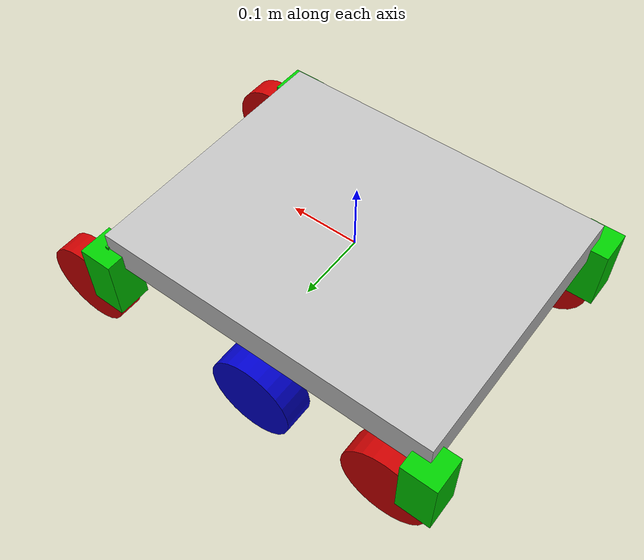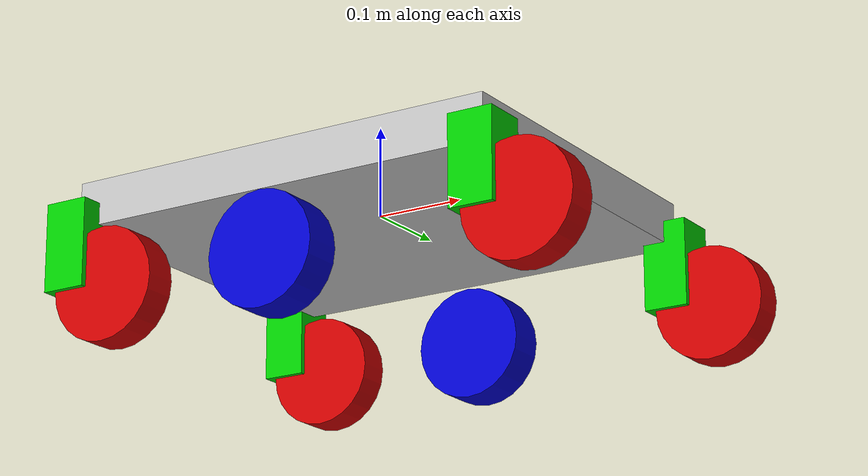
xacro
<?xml version="1.0"?>
<robot name="amr" xmlns:xacro="http://www.ros.org/wiki/xacro">

    <!-- Wheels property -->
    <xacro:property name="cwm" value="0.5" />                                   <!-- cwm: caster wheel mass, [kg] -->
    <xacro:property name="cwd" value="0.125" />                                 <!-- cwd: caster wheel diameter, [m]  -->
    <xacro:property name="cwr" value="${cwd/2}" />                              <!-- cwr: caster wheel radius, [m]  -->
    <xacro:property name="cwo" value="0.047" />                                 <!-- cwo: caster wheel offset, [m]  -->
    <xacro:property name="cwt" value="0.037" />                                 <!-- cwt: caster wheel tread, [m]  -->
    <xacro:property name="cwh" value="0.160" />                                 <!-- cwt: caster wheel heat, [m]  -->

    <xacro:property name="cw_ixx" value="${(cwm/12.0)*(3*cwr*cwr+cwt*cwt)}" />  <!-- cw_ixx: caster wheel inertia x axis, [kgm^2]  -->
    <xacro:property name="cw_iyy" value="${cw_ixx}" />                          <!-- cw_iyy: caster wheel inertia y axis, [kgm^2]  -->
    <xacro:property name="cw_izz" value="${(cwm*cwr*cwr)/2.0}" />               <!-- cw_izz: caster wheel inertia z axis, [kgm^2]  -->

    <xacro:property name="dwm" value="0.6" />                                   <!-- dwm: driving wheel mass, [kg] -->
    <xacro:property name="dwd" value="0.125" />                                 <!-- dwd: driving wheel diameter, [m]  -->
    <xacro:property name="dwr" value="${dwd/2}" />                              <!-- dwr: driving wheel radius, [m]  -->
    <xacro:property name="dwt" value="0.044" />                                 <!-- dwt: driving wheel tread, [m]  -->

    <xacro:property name="dw_ixx" value="${(dwm/12.0)*(3*dwr*dwr+dwt*dwt)}" />  <!-- dw_ixx: driving wheel inertia x axis, [kgm^2]  -->
    <xacro:property name="dw_iyy" value="${dw_ixx}" />                          <!-- dw_iyy: driving wheel inertia y axis, [kgm^2]  -->
    <xacro:property name="dw_izz" value="${(dwm*dwr*dwr)/2.0}" />               <!-- dw_izz: driving wheel inertia z axis, [kgm^2]  -->

    <!-- chassis property -->
    <xacro:property name="cm" value="70.0" />                                     <!-- cm: chassis mass, [kg] -->
    <xacro:property name="clod" value="0.500" />                                <!-- clod: chassis longitudinal dimension, [m]  -->
    <xacro:property name="clad" value="0.400" />                                <!-- clad: chassis lateral dimension, [m]  -->
    <xacro:property name="ch" value="0.050" />                                  <!-- ch: chassis height, [m]  -->

    <xacro:property name="c_ixx" value="${(cm/12.0)*(clad*clad+ch*ch)}" />      <!-- c_ixx: chassis inertia x axis, [kgm^2]  -->
    <xacro:property name="c_iyy" value="${(cm/12.0)*(clod*clod+ch*ch)}" />      <!-- c_iyy: chassis inertia y axis, [kgm^2]  -->
    <xacro:property name="c_izz" value="${(cm/12.0)*(clod*clod+clad*clad)}" />  <!-- c_izz: chassis inertia z axis, [kgm^2]  -->

    <!-- caster_wheel_link property -->
    <xacro:property name="cwlm" value="0.050" />                                  <!-- cwlm: caster wheel link mass, [kg] -->
    <xacro:property name="cwlh" value="${(cwh-cwr)}" />                           <!-- cwlh: caster wheel link height, [m]  -->

    <xacro:macro name="caster_wheel_link" params="number colour">

        <link name="caster_wheel_M${number}_link">

            <visual>
                <origin xyz="0 0 0" rpy="0 0 0"/>
                <geometry>
                    <box size="0.050 0.050 ${cwlh}"/>
                </geometry>
                <material name="green"/>
            </visual>

            <collision>
                <origin xyz="0 0 0" rpy="0 0 0"/>
                <geometry>
                    <box size="0.050 0.050 ${cwlh}"/>
                </geometry>
            </collision>

            <inertial>
                <origin xyz="0 0 0" rpy="0 0 0"/>
                <mass value="${cwlm}" />
                <inertia ixx="0" ixy="0.0" ixz="0.0" iyy="0" iyz="0.0" izz="0"/>
            </inertial>

        </link>

        <gazebo reference="caster_wheel_M${number}_link">
            <kp>10000.0</kp>
            <kd>10000.0</kd>
            <mu1>10.0</mu1>
            <mu2>10.0</mu2>
            <material>Gazebo/Green</material>
        </gazebo>

        <link name="wheel_M${number}_link">

            <visual>
                <origin xyz="0 0 0" rpy="0 0 0"/>
                <geometry>
                    <cylinder length="${cwt}" radius="${cwr}"/>
                </geometry>
                <material name="red"/>
            </visual>

            <collision>
                <origin xyz="0 0 0" rpy="0 0 0"/>
                <geometry>
                    <cylinder length="${cwt}" radius="${cwr}"/>
                </geometry>
            </collision>

            <inertial>
                <origin xyz="0 0 0" rpy="0 0 0"/>
                <mass value="${cwm}" />
                <inertia ixx="${cw_ixx}" ixy="0.0" ixz="0.0" iyy="${cw_iyy}" iyz="0.0" izz="${cw_izz}"/>
            </inertial>

        </link>

        <gazebo reference="wheel_M${number}_link">
            <kp>10000.0</kp>
            <kd>10000.0</kd>
            <mu1>10.0</mu1>
            <mu2>10.0</mu2>
            <material>Gazebo/${colour}</material>
        </gazebo>

        <joint name="caster_wheel_M${number}_wheel_M${number}_joint" type="continuous">
            <parent link="caster_wheel_M${number}_link"/>
            <child link="wheel_M${number}_link"/>
            <origin xyz="${cwo} 0 ${-cwlh/2}" rpy="1.570796 0 0"/>
            <limit  effort="1.0" velocity="0.005"/>
            <axis xyz="0 0 1"/>
        </joint>

    </xacro:macro>

    <xacro:macro name="driving_wheel_link" params="number colour">

        <link name="driving_wheel_M${number}_link">

            <visual>
                <origin xyz="0 0 0" rpy="0 0 0"/>
                <geometry>
                    <cylinder length="${dwt}" radius="${dwr}"/>
                </geometry>
                <material name="blue"/>
            </visual>

            <collision>
                <origin xyz="0 0 0" rpy="0 0 0"/>
                <geometry>
                    <cylinder length="${dwt}" radius="${dwr}"/>
                </geometry>
            </collision>

            <inertial>
                <origin xyz="0 0 0" rpy="0 0 0"/>
                <mass value="${dwm}" />
                <inertia ixx="${dw_ixx}" ixy="0.0" ixz="0.0" iyy="${dw_iyy}" iyz="0.0" izz="${dw_izz}"/>
            </inertial>

        </link>

        <gazebo reference="driving_wheel_M${number}_link">
            <kp>10000.0</kp>
            <kd>10000.0</kd>
            <mu1>10.0</mu1>
            <mu2>10.0</mu2>
            <material>Gazebo/${colour}</material>
        </gazebo>

    </xacro:macro>

    <material name="blue">
        <color rgba="0 0 0.8 1"/>
    </material>
    <material name="red">
        <color rgba="0.8 0 0 1"/>
    </material>
    <material name="green">
        <color rgba="0 0.8 0 1"/>
    </material>
    <material name="grey">
        <color rgba="0.75 0.75 0.75 1"/>
    </material>
    <material name="white">
        <color rgba="1.0 1.0 1.0 1"/>
    </material>
    <material name="black">
        <color rgba="0 0 0 1"/>
    </material>

    <!-- * * * Link Definitions * * * -->
    <link name="base_link">

        <visual>
            <origin xyz="0 0 0" rpy="0 0 0"/>
            <geometry>
                <box size="${clod} ${clad} ${ch}"/>
            </geometry>
            <material name="grey"/>
        </visual>

        <collision>
            <origin xyz="0 0 0" rpy="0 0 0"/>
            <geometry>
                 <box size="${clod} ${clad} ${ch}"/>
            </geometry>
        </collision>

        <inertial>
            <origin xyz="0 0 0" rpy="0 0 0"/>
            <mass value="${cm}"/>
            <inertia ixx="${c_ixx}" ixy="0.0" ixz="0.0" iyy="${c_iyy}" iyz="0.0" izz="${c_izz}"/>
        </inertial>

    </link>

    <gazebo reference="base_link">
        <kp>10000.0</kp>
        <kd>10000.0</kd>
        <mu1>10.0</mu1>
        <mu2>10.0</mu2>
        <material>Gazebo/Grey</material>
    </gazebo>

    <xacro:caster_wheel_link number="1" colour="Red"/>
    <xacro:caster_wheel_link number="2" colour="Red"/>
    <xacro:caster_wheel_link number="3" colour="Red"/>
    <xacro:caster_wheel_link number="4" colour="Red"/>

    <joint name="base_link_caster_wheel_M1_joint" type="continuous">
    	<parent link="base_link"/>
    	<child link="caster_wheel_M1_link"/>
        <origin xyz="${clod/2} ${clad/2} ${-ch}" rpy="0 0 0"/>
        <limit effort="1.0" velocity="1"/>
        <axis xyz="0 0 1"/>
	</joint>

    <joint name="base_link_caster_wheel_M2_joint" type="continuous">
    	<parent link="base_link"/>
    	<child link="caster_wheel_M2_link"/>
        <origin xyz="${clod/2} ${-clad/2} ${-ch}" rpy="0 0 0"/>
        <limit effort="1.0" velocity="1"/>
        <axis xyz="0 0 1"/>
	</joint>

    <joint name="base_link_caster_wheel_M3_joint" type="continuous">
    	<parent link="base_link"/>
    	<child link="caster_wheel_M3_link"/>
        <origin xyz="${-clod/2} ${clad/2} ${-ch}" rpy="0 0 0"/>
        <limit effort="1.0" velocity="1"/>
        <axis xyz="0 0 1"/>
	</joint>

    <joint name="base_link_caster_wheel_M4_joint" type="continuous">
    	<parent link="base_link"/>
    	<child link="caster_wheel_M4_link"/>
        <origin xyz="${-clod/2} ${-clad/2} ${-ch}" rpy="0 0 0"/>
        <limit effort="1.0" velocity="1"/>
        <axis xyz="0 0 1"/>
	</joint>

    <xacro:driving_wheel_link number="1" colour="Blue" />
    <xacro:driving_wheel_link number="2" colour="Blue"/>

    <joint name="base_link_driving_wheel_M1_joint" type="continuous">
    	<parent link="base_link"/>
    	<child link="driving_wheel_M1_link"/>
        <origin xyz="0 ${-clad/2} ${-cwlh}" rpy="1.57 0 0"/>
        <limit effort="15.0" velocity="0.1"/>
        <axis xyz="0 0 -1"/>
	</joint>

    <joint name="base_link_driving_wheel_M2_joint" type="continuous">
    	<parent link="base_link"/>
    	<child link="driving_wheel_M2_link"/>
        <origin xyz="0 ${clad/2} ${-cwlh}" rpy="1.57 0 0"/>
        <limit effort="15.0" velocity="0.1"/>
        <axis xyz="0 0 -1"/>
	</joint>

    <gazebo>
        <plugin name="differential_drive_controller" filename="libgazebo_ros_diff_drive.so">

            <alwaysOn>true</alwaysOn>
            <updateRate>50</updateRate>
            <leftJoint>base_link_driving_wheel_M2_joint</leftJoint>
            <rightJoint>base_link_driving_wheel_M1_joint</rightJoint>
            <wheelSeparation>${clad+dwt}</wheelSeparation>
            <wheelDiameter>${dwd}</wheelDiameter>
            <wheelAcceleration>0.2</wheelAcceleration>
            <wheelTorque>30</wheelTorque>
            <commandTopic>cmd_vel</commandTopic>
            <odometryTopic>odom</odometryTopic>
            <odometryFrame>odom</odometryFrame>
            <robotBaseFrame>base_footprint</robotBaseFrame>
            <publishWheelTF>true</publishWheelTF>
            <publishOdom>true</publishOdom>
            <robotBaseFrame>base_link</robotBaseFrame>
            <publishWheelJointState>true</publishWheelJointState>
            <legacyMode>false</legacyMode>
            <rosDebugLevel>false</rosDebugLevel>
            <publishOdomTF>true</publishOdomTF>
            <odometrySource>1</odometrySource>
            <publishTf>1</publishTf>
        </plugin>
    </gazebo>

    <!-- ############# Sensors ############ -->

    <!-- Depth sensor in the front -->

    <link name="front_dcamera_link">
      <visual>
        <origin rpy="0.0 0 0" xyz="0 0 0"/>
        <geometry>
          <box size="0.0005 0.0005 0.0005"/>
        </geometry>
        <material name="green"/>
      </visual>
    </link>

    <joint name="base_front_dcamera_joint" type="fixed">
      <parent link="base_link"/>
      <child link="front_dcamera_link"/>
      <origin xyz="${clod/2} 0 0" rpy="0 0 0"/>
    </joint>

    <gazebo reference="front_dcamera_link">
      <sensor name="front_depth_camera" type="depth">
        <update_rate>20</update_rate>
        <camera>
          <horizontal_fov>1.047198</horizontal_fov>
          <image>
            <width>640</width>
            <height>480</height>
            <format>R8G8B8</format>
          </image>
          <clip>
            <near>0.05</near>
            <far>3</far>
          </clip>
        </camera>
        <plugin name="front_depth_link_controller" filename="libgazebo_ros_openni_kinect.so">
          <baseline>0.2</baseline>
          <alwaysOn>true</alwaysOn>
          <updateRate>1.0</updateRate>
          <cameraName>front_dcamera</cameraName>
          <imageTopicName>front_dcamera/color/image_raw</imageTopicName>
          <cameraInfoTopicName>/front_dcamera/color/camera_info</cameraInfoTopicName>
          <depthImageTopicName>/front_dcamera/depth/image_raw</depthImageTopicName>
          <depthImageInfoTopicName>/front_dcamera/depth/camera_info</depthImageInfoTopicName>
          <pointCloudTopicName>/front_dcamera/depth/points</pointCloudTopicName>
          <frameName>front_dcamera_link</frameName>
          <pointCloudCutoff>0.5</pointCloudCutoff>
          <pointCloudCutoffMax>3.0</pointCloudCutoffMax>
          <distortionK1>0.00000001</distortionK1>
          <distortionK2>0.00000001</distortionK2>
          <distortionK3>0.00000001</distortionK3>
          <distortionT1>0.00000001</distortionT1>
          <distortionT2>0.00000001</distortionT2>
          <CxPrime>0</CxPrime>
          <Cx>0</Cx>
          <Cy>0</Cy>
          <focalLength>0</focalLength>
          <hackBaseline>0</hackBaseline>
        </plugin>
      </sensor>
    </gazebo>

    <!-- Depth sensor in the back -->

    <link name="rear_dcamera_link">
      <visual>
        <origin rpy="0.0 0 0" xyz="0 0 0"/>
        <geometry>
          <box size="0.0005 0.0005 0.0005"/>
        </geometry>
        <material name="green"/>
      </visual>
    </link>

    <joint name="base_rear_dcamera_joint" type="fixed">
      <parent link="base_link"/>
      <child link="rear_dcamera_link"/>
      <origin xyz="${-clod/2} 0 0" rpy="0 0 3.1416"/>
    </joint>

    <gazebo reference="rear_dcamera_link">
      <sensor name="rear_depth_camera" type="depth">
        <update_rate>20</update_rate>
        <camera>
          <horizontal_fov>1.047198</horizontal_fov>
          <image>
            <width>640</width>
            <height>480</height>
            <format>R8G8B8</format>
          </image>
          <clip>
            <near>0.05</near>
            <far>3</far>
          </clip>
        </camera>
        <plugin name="rear_depth_link_controller" filename="libgazebo_ros_openni_kinect.so">
          <baseline>0.2</baseline>
          <alwaysOn>true</alwaysOn>
          <updateRate>1.0</updateRate>
          <cameraName>rear_dcamera</cameraName>
          <imageTopicName>rear_dcamera/color/image_raw</imageTopicName>
          <cameraInfoTopicName>/rear_dcamera/color/camera_info</cameraInfoTopicName>
          <depthImageTopicName>/rear_dcamera/depth/image_raw</depthImageTopicName>
          <depthImageInfoTopicName>/rear_dcamera/depth/camera_info</depthImageInfoTopicName>
          <pointCloudTopicName>/rear_dcamera/depth/points</pointCloudTopicName>
          <frameName>rear_dcamera_link</frameName>
          <pointCloudCutoff>0.5</pointCloudCutoff>
          <pointCloudCutoffMax>3.0</pointCloudCutoffMax>
          <distortionK1>0.00000001</distortionK1>
          <distortionK2>0.00000001</distortionK2>
          <distortionK3>0.00000001</distortionK3>
          <distortionT1>0.00000001</distortionT1>
          <distortionT2>0.00000001</distortionT2>
          <CxPrime>0</CxPrime>
          <Cx>0</Cx>
          <Cy>0</Cy>
          <focalLength>0</focalLength>
          <hackBaseline>0</hackBaseline>
        </plugin>
      </sensor>
    </gazebo>

    <!-- Sensor Laser in the front -->

    <link name="front_laserscanner_link">

        <visual>
            <origin rpy="0.0 0 0" xyz="0 0 0"/>
            <geometry>
                <box size="0.005 0.005 0.005"/>
            </geometry>
            <material name="green"/>
        </visual>

        <collision>
            <origin rpy="0.0 0 0" xyz="0 0 0"/>
            <geometry>
                <box size="0.005 0.005 0.005"/>
            </geometry>
        </collision>

        <inertial>
            <mass value="1e-5" />
            <origin xyz="0 0 0" rpy="0 0 0"/>
            <inertia ixx="1e-6" ixy="0" ixz="0" iyy="1e-6" iyz="0" izz="1e-6" />
        </inertial>

    </link>

    <joint name="base_front_laserscanner_joint" type="fixed">
        <axis xyz="0 1 0" />
        <parent link="base_link"/>
        <child link="front_laserscanner_link"/>
        <origin xyz="${clod/2} ${clad/2} 0" rpy="0 0 0"/>
    </joint>

    <gazebo reference="front_laserscanner_link">
        <sensor type="ray" name="front_rplidar_sensor">
            <pose>0 0 0 0 0 0</pose>
            <visualize>false</visualize>
            <update_rate>40</update_rate>
            <ray>
                <scan>
                    <horizontal>
                        <samples>720</samples>
                        <resolution>1</resolution>
                        <min_angle>-1.4</min_angle>
                        <max_angle>3.1416</max_angle>
                    </horizontal>
                </scan>
                <range>
                    <min>0.10</min>
                    <max>30.0</max>
                    <resolution>0.01</resolution>
                </range>
                <noise>
                    <type>gaussian</type>
                    <mean>0.0</mean>
                    <stddev>0.01</stddev>
                </noise>
            </ray>
            <plugin name="gazebo_ros_head_hokuyo_controller" filename="libgazebo_ros_laser.so">
                <topicName>front_scan</topicName>
                <frameName>front_laserscanner_link</frameName>
            </plugin>
        </sensor>
    </gazebo>

    <!-- Sensor Laser in the back -->

    <link name="rear_laserscanner_link">

        <visual>
            <origin rpy="0.0 0 0" xyz="0 0 0"/>
            <geometry>
                <box size="0.0005 0.0005 0.0005"/>
            </geometry>
            <material name="green"/>
        </visual>

        <collision>
            <origin rpy="0.0 0 0" xyz="0 0 0"/>
            <geometry>
                <box size="0.0005 0.0005 0.0005"/>
            </geometry>
        </collision>

        <inertial>
            <mass value="1e-5" />
            <origin xyz="0 0 0" rpy="0 0 0"/>
            <inertia ixx="1e-6" ixy="0" ixz="0" iyy="1e-6" iyz="0" izz="1e-6" />
        </inertial>

    </link>

    <joint name="base_rear_laserscanner_joint" type="fixed">
        <parent link="base_link"/>
        <child link="rear_laserscanner_link"/>
        <origin xyz="${-clod/2} ${-clad/2} 0" rpy="0 0 3.14159268"/>
    </joint>

    <gazebo reference="rear_laserscanner_link">
        <sensor type="ray" name="rear_rplidar_sensor">
            <pose>0 0 0 0 0 0</pose>
            <visualize>false</visualize>
            <update_rate>40</update_rate>
            <ray>
                <scan>
                    <horizontal>
                        <samples>720</samples>
                        <resolution>1</resolution>
                        <min_angle>-1.4</min_angle>
                        <max_angle>3.1416</max_angle>
                    </horizontal>
                </scan>
                <range>
                    <min>0.10</min>
                    <max>30.0</max>
                    <resolution>0.01</resolution>
                </range>
                <noise>
                    <type>gaussian</type>
                    <mean>0.0</mean>
                    <stddev>0.01</stddev>
                </noise>
            </ray>
            <plugin name="gazebo_ros_head_hokuyo_controller" filename="libgazebo_ros_laser.so">
                <topicName>rear_scan</topicName>
                <frameName>rear_laserscanner_link</frameName>
            </plugin>
        </sensor>
    </gazebo>

</robot>
